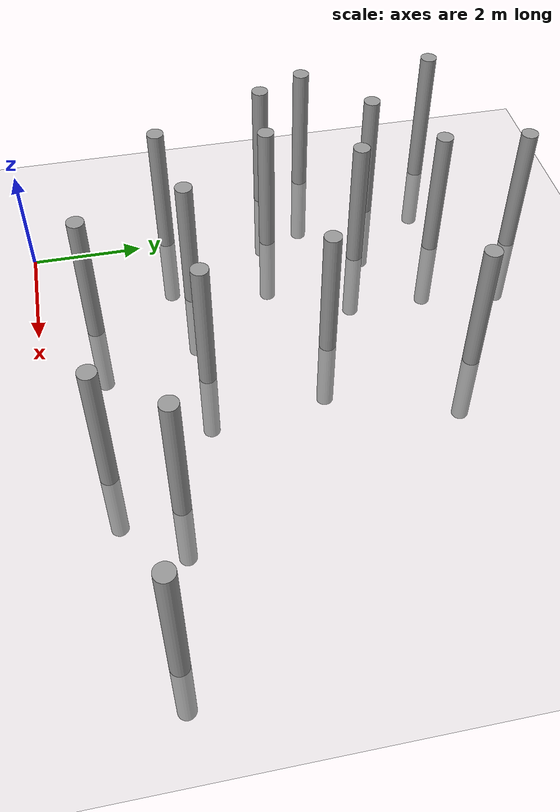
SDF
<sdf version="1.6">
 <world name="default">
  <model name="ground_plane">
   <static>1</static>
   <link name="link">
    <collision name="collision">
     <geometry><plane><normal>0 0 1</normal><size>100 100</size></plane></geometry>
     <surface><friction><ode><mu>100</mu><mu2>50</mu2></ode></friction></surface>
    </collision>
    <visual name="visual">
     <cast_shadows>0</cast_shadows>
     <geometry><plane><normal>0 0 1</normal><size>100 100</size></plane></geometry>
     <material>
      <script><uri>file://media/materials/scripts/gazebo.material</uri><name>Gazebo/Grey</name></script>
     </material>
    </visual>
   </link>
  </model>
  <model name="unit_cylinder_clone_0">
   <link name="link">
    <inertial>
     <mass>1000</mass>
     <inertia><ixx>145.833</ixx><ixy>0</ixy><ixz>0</ixz><iyy>145.833</iyy><iyz>0</iyz><izz>125</izz></inertia>
    </inertial>
    <visual name="visual">
     <geometry><cylinder><radius>0.15</radius><length>4</length></cylinder></geometry>
     <material>
      <script><name>Gazebo/Grey</name><uri>file://media/materials/scripts/gazebo.material</uri></script>
      <shader type="pixel"><normal_map>__default__</normal_map></shader>
      <ambient>0.3 0.3 0.3 1</ambient>
      <diffuse>0.7 0.7 0.7 1</diffuse>
      <specular>0.01 0.01 0.01 1</specular>
      <emissive>0 0 0 1</emissive>
     </material>
    </visual>
    <collision name="collision">
     <geometry><cylinder><radius>0.15</radius><length>4</length></cylinder></geometry>
     <surface>
      <friction>
       <ode><mu>1</mu><mu2>1</mu2><fdir1>0 0 0</fdir1><slip1>0</slip1><slip2>0</slip2></ode>
       <torsional>
        <coefficient>1</coefficient>
        <patch_radius>0</patch_radius>
        <surface_radius>0</surface_radius>
        <use_patch_radius>1</use_patch_radius>
        <ode><slip>0</slip></ode>
       </torsional>
      </friction>
      <bounce><restitution_coefficient>0</restitution_coefficient><threshold>1e+06</threshold></bounce>
      <contact>
       <collide_without_contact>0</collide_without_contact>
       <collide_without_contact_bitmask>1</collide_without_contact_bitmask>
       <collide_bitmask>1</collide_bitmask>
       <ode>
        <soft_cfm>0</soft_cfm>
        <soft_erp>0.2</soft_erp>
        <kp>1e+13</kp>
        <kd>1</kd>
        <max_vel>0.01</max_vel>
        <min_depth>0</min_depth>
       </ode>
       <bullet>
        <split_impulse>1</split_impulse>
        <split_impulse_penetration_threshold>-0.01</split_impulse_penetration_threshold>
        <soft_cfm>0</soft_cfm>
        <soft_erp>0.2</soft_erp>
        <kp>1e+13</kp>
        <kd>1</kd>
       </bullet>
      </contact>
     </surface>
    </collision>
   </link>
   <static>0</static>
   <pose>-0.126052 2.52876 0.5 0 -0 0</pose>
  </model>
  <model name="unit_cylinder_clone_1">
   <link name="link">
    <inertial>
     <mass>1000</mass>
     <inertia><ixx>145.833</ixx><ixy>0</ixy><ixz>0</ixz><iyy>145.833</iyy><iyz>0</iyz><izz>125</izz></inertia>
    </inertial>
    <visual name="visual">
     <geometry><cylinder><radius>0.15</radius><length>4</length></cylinder></geometry>
     <material>
      <script><name>Gazebo/Grey</name><uri>file://media/materials/scripts/gazebo.material</uri></script>
      <shader type="pixel"><normal_map>__default__</normal_map></shader>
      <ambient>0.3 0.3 0.3 1</ambient>
      <diffuse>0.7 0.7 0.7 1</diffuse>
      <specular>0.01 0.01 0.01 1</specular>
      <emissive>0 0 0 1</emissive>
     </material>
    </visual>
    <collision name="collision">
     <geometry><cylinder><radius>0.15</radius><length>4</length></cylinder></geometry>
     <surface>
      <friction>
       <ode><mu>1</mu><mu2>1</mu2><fdir1>0 0 0</fdir1><slip1>0</slip1><slip2>0</slip2></ode>
       <torsional>
        <coefficient>1</coefficient>
        <patch_radius>0</patch_radius>
        <surface_radius>0</surface_radius>
        <use_patch_radius>1</use_patch_radius>
        <ode><slip>0</slip></ode>
       </torsional>
      </friction>
      <bounce><restitution_coefficient>0</restitution_coefficient><threshold>1e+06</threshold></bounce>
      <contact>
       <collide_without_contact>0</collide_without_contact>
       <collide_without_contact_bitmask>1</collide_without_contact_bitmask>
       <collide_bitmask>1</collide_bitmask>
       <ode>
        <soft_cfm>0</soft_cfm>
        <soft_erp>0.2</soft_erp>
        <kp>1e+13</kp>
        <kd>1</kd>
        <max_vel>0.01</max_vel>
        <min_depth>0</min_depth>
       </ode>
       <bullet>
        <split_impulse>1</split_impulse>
        <split_impulse_penetration_threshold>-0.01</split_impulse_penetration_threshold>
        <soft_cfm>0</soft_cfm>
        <soft_erp>0.2</soft_erp>
        <kp>1e+13</kp>
        <kd>1</kd>
       </bullet>
      </contact>
     </surface>
    </collision>
   </link>
   <static>0</static>
   <pose>1.48874 2.81375 0.517469 0 -0 0</pose>
  </model>
  <model name="unit_cylinder_clone_2">
   <link name="link">
    <inertial>
     <mass>1000</mass>
     <inertia><ixx>145.833</ixx><ixy>0</ixy><ixz>0</ixz><iyy>145.833</iyy><iyz>0</iyz><izz>125</izz></inertia>
    </inertial>
    <visual name="visual">
     <geometry><cylinder><radius>0.15</radius><length>4</length></cylinder></geometry>
     <material>
      <script><name>Gazebo/Grey</name><uri>file://media/materials/scripts/gazebo.material</uri></script>
      <shader type="pixel"><normal_map>__default__</normal_map></shader>
      <ambient>0.3 0.3 0.3 1</ambient>
      <diffuse>0.7 0.7 0.7 1</diffuse>
      <specular>0.01 0.01 0.01 1</specular>
      <emissive>0 0 0 1</emissive>
     </material>
    </visual>
    <collision name="collision">
     <geometry><cylinder><radius>0.15</radius><length>4</length></cylinder></geometry>
     <surface>
      <friction>
       <ode><mu>1</mu><mu2>1</mu2><fdir1>0 0 0</fdir1><slip1>0</slip1><slip2>0</slip2></ode>
       <torsional>
        <coefficient>1</coefficient>
        <patch_radius>0</patch_radius>
        <surface_radius>0</surface_radius>
        <use_patch_radius>1</use_patch_radius>
        <ode><slip>0</slip></ode>
       </torsional>
      </friction>
      <bounce><restitution_coefficient>0</restitution_coefficient><threshold>1e+06</threshold></bounce>
      <contact>
       <collide_without_contact>0</collide_without_contact>
       <collide_without_contact_bitmask>1</collide_without_contact_bitmask>
       <collide_bitmask>1</collide_bitmask>
       <ode>
        <soft_cfm>0</soft_cfm>
        <soft_erp>0.2</soft_erp>
        <kp>1e+13</kp>
        <kd>1</kd>
        <max_vel>0.01</max_vel>
        <min_depth>0</min_depth>
       </ode>
       <bullet>
        <split_impulse>1</split_impulse>
        <split_impulse_penetration_threshold>-0.01</split_impulse_penetration_threshold>
        <soft_cfm>0</soft_cfm>
        <soft_erp>0.2</soft_erp>
        <kp>1e+13</kp>
        <kd>1</kd>
       </bullet>
      </contact>
     </surface>
    </collision>
   </link>
   <static>0</static>
   <pose>-1.0734 4.58997 0.5 0 -0 0</pose>
  </model>
  <model name="unit_cylinder_clone_3">
   <link name="link">
    <inertial>
     <mass>1000</mass>
     <inertia><ixx>145.833</ixx><ixy>0</ixy><ixz>0</ixz><iyy>145.833</iyy><iyz>0</iyz><izz>125</izz></inertia>
    </inertial>
    <visual name="visual">
     <geometry><cylinder><radius>0.15</radius><length>4</length></cylinder></geometry>
     <material>
      <script><name>Gazebo/Grey</name><uri>file://media/materials/scripts/gazebo.material</uri></script>
      <shader type="pixel"><normal_map>__default__</normal_map></shader>
      <ambient>0.3 0.3 0.3 1</ambient>
      <diffuse>0.7 0.7 0.7 1</diffuse>
      <specular>0.01 0.01 0.01 1</specular>
      <emissive>0 0 0 1</emissive>
     </material>
    </visual>
    <collision name="collision">
     <geometry><cylinder><radius>0.15</radius><length>4</length></cylinder></geometry>
     <surface>
      <friction>
       <ode><mu>1</mu><mu2>1</mu2><fdir1>0 0 0</fdir1><slip1>0</slip1><slip2>0</slip2></ode>
       <torsional>
        <coefficient>1</coefficient>
        <patch_radius>0</patch_radius>
        <surface_radius>0</surface_radius>
        <use_patch_radius>1</use_patch_radius>
        <ode><slip>0</slip></ode>
       </torsional>
      </friction>
      <bounce><restitution_coefficient>0</restitution_coefficient><threshold>1e+06</threshold></bounce>
      <contact>
       <collide_without_contact>0</collide_without_contact>
       <collide_without_contact_bitmask>1</collide_without_contact_bitmask>
       <collide_bitmask>1</collide_bitmask>
       <ode>
        <soft_cfm>0</soft_cfm>
        <soft_erp>0.2</soft_erp>
        <kp>1e+13</kp>
        <kd>1</kd>
        <max_vel>0.01</max_vel>
        <min_depth>0</min_depth>
       </ode>
       <bullet>
        <split_impulse>1</split_impulse>
        <split_impulse_penetration_threshold>-0.01</split_impulse_penetration_threshold>
        <soft_cfm>0</soft_cfm>
        <soft_erp>0.2</soft_erp>
        <kp>1e+13</kp>
        <kd>1</kd>
       </bullet>
      </contact>
     </surface>
    </collision>
   </link>
   <static>0</static>
   <pose>1 6 0.5 0 -0 0</pose>
  </model>
  <model name="unit_cylinder_clone_18">
   <link name="link">
    <inertial>
     <mass>1000</mass>
     <inertia><ixx>145.833</ixx><ixy>0</ixy><ixz>0</ixz><iyy>145.833</iyy><iyz>0</iyz><izz>125</izz></inertia>
    </inertial>
    <visual name="visual">
     <geometry><cylinder><radius>0.15</radius><length>4</length></cylinder></geometry>
     <material>
      <script><name>Gazebo/Grey</name><uri>file://media/materials/scripts/gazebo.material</uri></script>
      <shader type="pixel"><normal_map>__default__</normal_map></shader>
      <ambient>0.3 0.3 0.3 1</ambient>
      <diffuse>0.7 0.7 0.7 1</diffuse>
      <specular>0.01 0.01 0.01 1</specular>
      <emissive>0 0 0 1</emissive>
     </material>
    </visual>
    <collision name="collision">
     <geometry><cylinder><radius>0.15</radius><length>4</length></cylinder></geometry>
     <surface>
      <friction>
       <ode><mu>1</mu><mu2>1</mu2><fdir1>0 0 0</fdir1><slip1>0</slip1><slip2>0</slip2></ode>
       <torsional>
        <coefficient>1</coefficient>
        <patch_radius>0</patch_radius>
        <surface_radius>0</surface_radius>
        <use_patch_radius>1</use_patch_radius>
        <ode><slip>0</slip></ode>
       </torsional>
      </friction>
      <bounce><restitution_coefficient>0</restitution_coefficient><threshold>1e+06</threshold></bounce>
      <contact>
       <collide_without_contact>0</collide_without_contact>
       <collide_without_contact_bitmask>1</collide_without_contact_bitmask>
       <collide_bitmask>1</collide_bitmask>
       <ode>
        <soft_cfm>0</soft_cfm>
        <soft_erp>0.2</soft_erp>
        <kp>1e+13</kp>
        <kd>1</kd>
        <max_vel>0.01</max_vel>
        <min_depth>0</min_depth>
       </ode>
       <bullet>
        <split_impulse>1</split_impulse>
        <split_impulse_penetration_threshold>-0.01</split_impulse_penetration_threshold>
        <soft_cfm>0</soft_cfm>
        <soft_erp>0.2</soft_erp>
        <kp>1e+13</kp>
        <kd>1</kd>
       </bullet>
      </contact>
     </surface>
    </collision>
   </link>
   <static>0</static>
   <pose>1.18442 9.01128 0.5 0 -0 0</pose>
  </model>
  <model name="unit_cylinder_clone_20">
   <link name="link">
    <inertial>
     <mass>1000</mass>
     <inertia><ixx>145.833</ixx><ixy>0</ixy><ixz>0</ixz><iyy>145.833</iyy><iyz>0</iyz><izz>125</izz></inertia>
    </inertial>
    <visual name="visual">
     <geometry><cylinder><radius>0.15</radius><length>4</length></cylinder></geometry>
     <material>
      <script><name>Gazebo/Grey</name><uri>file://media/materials/scripts/gazebo.material</uri></script>
      <shader type="pixel"><normal_map>__default__</normal_map></shader>
      <ambient>0.3 0.3 0.3 1</ambient>
      <diffuse>0.7 0.7 0.7 1</diffuse>
      <specular>0.01 0.01 0.01 1</specular>
      <emissive>0 0 0 1</emissive>
     </material>
    </visual>
    <collision name="collision">
     <geometry><cylinder><radius>0.15</radius><length>4</length></cylinder></geometry>
     <surface>
      <friction>
       <ode><mu>1</mu><mu2>1</mu2><fdir1>0 0 0</fdir1><slip1>0</slip1><slip2>0</slip2></ode>
       <torsional>
        <coefficient>1</coefficient>
        <patch_radius>0</patch_radius>
        <surface_radius>0</surface_radius>
        <use_patch_radius>1</use_patch_radius>
        <ode><slip>0</slip></ode>
       </torsional>
      </friction>
      <bounce><restitution_coefficient>0</restitution_coefficient><threshold>1e+06</threshold></bounce>
      <contact>
       <collide_without_contact>0</collide_without_contact>
       <collide_without_contact_bitmask>1</collide_without_contact_bitmask>
       <collide_bitmask>1</collide_bitmask>
       <ode>
        <soft_cfm>0</soft_cfm>
        <soft_erp>0.2</soft_erp>
        <kp>1e+13</kp>
        <kd>1</kd>
        <max_vel>0.01</max_vel>
        <min_depth>0</min_depth>
       </ode>
       <bullet>
        <split_impulse>1</split_impulse>
        <split_impulse_penetration_threshold>-0.01</split_impulse_penetration_threshold>
        <soft_cfm>0</soft_cfm>
        <soft_erp>0.2</soft_erp>
        <kp>1e+13</kp>
        <kd>1</kd>
       </bullet>
      </contact>
     </surface>
    </collision>
   </link>
   <static>0</static>
   <pose>3.98029 7.32313 0.5 0 -0 0</pose>
  </model>
  <model name="unit_cylinder_clone_21">
   <link name="link">
    <inertial>
     <mass>1000</mass>
     <inertia><ixx>145.833</ixx><ixy>0</ixy><ixz>0</ixz><iyy>145.833</iyy><iyz>0</iyz><izz>125</izz></inertia>
    </inertial>
    <visual name="visual">
     <geometry><cylinder><radius>0.15</radius><length>4</length></cylinder></geometry>
     <material>
      <script><name>Gazebo/Grey</name><uri>file://media/materials/scripts/gazebo.material</uri></script>
      <shader type="pixel"><normal_map>__default__</normal_map></shader>
      <ambient>0.3 0.3 0.3 1</ambient>
      <diffuse>0.7 0.7 0.7 1</diffuse>
      <specular>0.01 0.01 0.01 1</specular>
      <emissive>0 0 0 1</emissive>
     </material>
    </visual>
    <collision name="collision">
     <geometry><cylinder><radius>0.15</radius><length>4</length></cylinder></geometry>
     <surface>
      <friction>
       <ode><mu>1</mu><mu2>1</mu2><fdir1>0 0 0</fdir1><slip1>0</slip1><slip2>0</slip2></ode>
       <torsional>
        <coefficient>1</coefficient>
        <patch_radius>0</patch_radius>
        <surface_radius>0</surface_radius>
        <use_patch_radius>1</use_patch_radius>
        <ode><slip>0</slip></ode>
       </torsional>
      </friction>
      <bounce><restitution_coefficient>0</restitution_coefficient><threshold>1e+06</threshold></bounce>
      <contact>
       <collide_without_contact>0</collide_without_contact>
       <collide_without_contact_bitmask>1</collide_without_contact_bitmask>
       <collide_bitmask>1</collide_bitmask>
       <ode>
        <soft_cfm>0</soft_cfm>
        <soft_erp>0.2</soft_erp>
        <kp>1e+13</kp>
        <kd>1</kd>
        <max_vel>0.01</max_vel>
        <min_depth>0</min_depth>
       </ode>
       <bullet>
        <split_impulse>1</split_impulse>
        <split_impulse_penetration_threshold>-0.01</split_impulse_penetration_threshold>
        <soft_cfm>0</soft_cfm>
        <soft_erp>0.2</soft_erp>
        <kp>1e+13</kp>
        <kd>1</kd>
       </bullet>
      </contact>
     </surface>
    </collision>
   </link>
   <static>0</static>
   <pose>-1.30193 7.90801 0.66206 0 -0 0</pose>
  </model>
  <model name="unit_cylinder_clone_22">
   <link name="link">
    <inertial>
     <mass>1000</mass>
     <inertia><ixx>145.833</ixx><ixy>0</ixy><ixz>0</ixz><iyy>145.833</iyy><iyz>0</iyz><izz>125</izz></inertia>
    </inertial>
    <visual name="visual">
     <geometry><cylinder><radius>0.15</radius><length>4</length></cylinder></geometry>
     <material>
      <script><name>Gazebo/Grey</name><uri>file://media/materials/scripts/gazebo.material</uri></script>
      <shader type="pixel"><normal_map>__default__</normal_map></shader>
      <ambient>0.3 0.3 0.3 1</ambient>
      <diffuse>0.7 0.7 0.7 1</diffuse>
      <specular>0.01 0.01 0.01 1</specular>
      <emissive>0 0 0 1</emissive>
     </material>
    </visual>
    <collision name="collision">
     <geometry><cylinder><radius>0.15</radius><length>4</length></cylinder></geometry>
     <surface>
      <friction>
       <ode><mu>1</mu><mu2>1</mu2><fdir1>0 0 0</fdir1><slip1>0</slip1><slip2>0</slip2></ode>
       <torsional>
        <coefficient>1</coefficient>
        <patch_radius>0</patch_radius>
        <surface_radius>0</surface_radius>
        <use_patch_radius>1</use_patch_radius>
        <ode><slip>0</slip></ode>
       </torsional>
      </friction>
      <bounce><restitution_coefficient>0</restitution_coefficient><threshold>1e+06</threshold></bounce>
      <contact>
       <collide_without_contact>0</collide_without_contact>
       <collide_without_contact_bitmask>1</collide_without_contact_bitmask>
       <collide_bitmask>1</collide_bitmask>
       <ode>
        <soft_cfm>0</soft_cfm>
        <soft_erp>0.2</soft_erp>
        <kp>1e+13</kp>
        <kd>1</kd>
        <max_vel>0.01</max_vel>
        <min_depth>0</min_depth>
       </ode>
       <bullet>
        <split_impulse>1</split_impulse>
        <split_impulse_penetration_threshold>-0.01</split_impulse_penetration_threshold>
        <soft_cfm>0</soft_cfm>
        <soft_erp>0.2</soft_erp>
        <kp>1e+13</kp>
        <kd>1</kd>
       </bullet>
      </contact>
     </surface>
    </collision>
   </link>
   <static>0</static>
   <pose>0.989169 7.5132 0.5 0 -0 0</pose>
  </model>
  <model name="unit_cylinder_clone_23">
   <link name="link">
    <inertial>
     <mass>1000</mass>
     <inertia><ixx>145.833</ixx><ixy>0</ixy><ixz>0</ixz><iyy>145.833</iyy><iyz>0</iyz><izz>125</izz></inertia>
    </inertial>
    <visual name="visual">
     <geometry><cylinder><radius>0.15</radius><length>4</length></cylinder></geometry>
     <material>
      <script><name>Gazebo/Grey</name><uri>file://media/materials/scripts/gazebo.material</uri></script>
      <shader type="pixel"><normal_map>__default__</normal_map></shader>
      <ambient>0.3 0.3 0.3 1</ambient>
      <diffuse>0.7 0.7 0.7 1</diffuse>
      <specular>0.01 0.01 0.01 1</specular>
      <emissive>0 0 0 1</emissive>
     </material>
    </visual>
    <collision name="collision">
     <geometry><cylinder><radius>0.15</radius><length>4</length></cylinder></geometry>
     <surface>
      <friction>
       <ode><mu>1</mu><mu2>1</mu2><fdir1>0 0 0</fdir1><slip1>0</slip1><slip2>0</slip2></ode>
       <torsional>
        <coefficient>1</coefficient>
        <patch_radius>0</patch_radius>
        <surface_radius>0</surface_radius>
        <use_patch_radius>1</use_patch_radius>
        <ode><slip>0</slip></ode>
       </torsional>
      </friction>
      <bounce><restitution_coefficient>0</restitution_coefficient><threshold>1e+06</threshold></bounce>
      <contact>
       <collide_without_contact>0</collide_without_contact>
       <collide_without_contact_bitmask>1</collide_without_contact_bitmask>
       <collide_bitmask>1</collide_bitmask>
       <ode>
        <soft_cfm>0</soft_cfm>
        <soft_erp>0.2</soft_erp>
        <kp>1e+13</kp>
        <kd>1</kd>
        <max_vel>0.01</max_vel>
        <min_depth>0</min_depth>
       </ode>
       <bullet>
        <split_impulse>1</split_impulse>
        <split_impulse_penetration_threshold>-0.01</split_impulse_penetration_threshold>
        <soft_cfm>0</soft_cfm>
        <soft_erp>0.2</soft_erp>
        <kp>1e+13</kp>
        <kd>1</kd>
       </bullet>
      </contact>
     </surface>
    </collision>
   </link>
   <static>0</static>
   <pose>0.229002 4.44909 0.5 0 -0 0</pose>
  </model>
  <model name="unit_cylinder_clone_24">
   <link name="link">
    <inertial>
     <mass>1000</mass>
     <inertia><ixx>145.833</ixx><ixy>0</ixy><ixz>0</ixz><iyy>145.833</iyy><iyz>0</iyz><izz>125</izz></inertia>
    </inertial>
    <visual name="visual">
     <geometry><cylinder><radius>0.15</radius><length>4</length></cylinder></geometry>
     <material>
      <script><name>Gazebo/Grey</name><uri>file://media/materials/scripts/gazebo.material</uri></script>
      <shader type="pixel"><normal_map>__default__</normal_map></shader>
      <ambient>0.3 0.3 0.3 1</ambient>
      <diffuse>0.7 0.7 0.7 1</diffuse>
      <specular>0.01 0.01 0.01 1</specular>
      <emissive>0 0 0 1</emissive>
     </material>
    </visual>
    <collision name="collision">
     <geometry><cylinder><radius>0.15</radius><length>4</length></cylinder></geometry>
     <surface>
      <friction>
       <ode><mu>1</mu><mu2>1</mu2><fdir1>0 0 0</fdir1><slip1>0</slip1><slip2>0</slip2></ode>
       <torsional>
        <coefficient>1</coefficient>
        <patch_radius>0</patch_radius>
        <surface_radius>0</surface_radius>
        <use_patch_radius>1</use_patch_radius>
        <ode><slip>0</slip></ode>
       </torsional>
      </friction>
      <bounce><restitution_coefficient>0</restitution_coefficient><threshold>1e+06</threshold></bounce>
      <contact>
       <collide_without_contact>0</collide_without_contact>
       <collide_without_contact_bitmask>1</collide_without_contact_bitmask>
       <collide_bitmask>1</collide_bitmask>
       <ode>
        <soft_cfm>0</soft_cfm>
        <soft_erp>0.2</soft_erp>
        <kp>1e+13</kp>
        <kd>1</kd>
        <max_vel>0.01</max_vel>
        <min_depth>0</min_depth>
       </ode>
       <bullet>
        <split_impulse>1</split_impulse>
        <split_impulse_penetration_threshold>-0.01</split_impulse_penetration_threshold>
        <soft_cfm>0</soft_cfm>
        <soft_erp>0.2</soft_erp>
        <kp>1e+13</kp>
        <kd>1</kd>
       </bullet>
      </contact>
     </surface>
    </collision>
   </link>
   <static>0</static>
   <pose>3.1593 4.96118 0.5 0 -0 0</pose>
  </model>
  <model name="unit_cylinder_clone_25">
   <link name="link">
    <inertial>
     <mass>1000</mass>
     <inertia><ixx>145.833</ixx><ixy>0</ixy><ixz>0</ixz><iyy>145.833</iyy><iyz>0</iyz><izz>125</izz></inertia>
    </inertial>
    <visual name="visual">
     <geometry><cylinder><radius>0.15</radius><length>4</length></cylinder></geometry>
     <material>
      <script><name>Gazebo/Grey</name><uri>file://media/materials/scripts/gazebo.material</uri></script>
      <shader type="pixel"><normal_map>__default__</normal_map></shader>
      <ambient>0.3 0.3 0.3 1</ambient>
      <diffuse>0.7 0.7 0.7 1</diffuse>
      <specular>0.01 0.01 0.01 1</specular>
      <emissive>0 0 0 1</emissive>
     </material>
    </visual>
    <collision name="collision">
     <geometry><cylinder><radius>0.15</radius><length>4</length></cylinder></geometry>
     <surface>
      <friction>
       <ode><mu>1</mu><mu2>1</mu2><fdir1>0 0 0</fdir1><slip1>0</slip1><slip2>0</slip2></ode>
       <torsional>
        <coefficient>1</coefficient>
        <patch_radius>0</patch_radius>
        <surface_radius>0</surface_radius>
        <use_patch_radius>1</use_patch_radius>
        <ode><slip>0</slip></ode>
       </torsional>
      </friction>
      <bounce><restitution_coefficient>0</restitution_coefficient><threshold>1e+06</threshold></bounce>
      <contact>
       <collide_without_contact>0</collide_without_contact>
       <collide_without_contact_bitmask>1</collide_without_contact_bitmask>
       <collide_bitmask>1</collide_bitmask>
       <ode>
        <soft_cfm>0</soft_cfm>
        <soft_erp>0.2</soft_erp>
        <kp>1e+13</kp>
        <kd>1</kd>
        <max_vel>0.01</max_vel>
        <min_depth>0</min_depth>
       </ode>
       <bullet>
        <split_impulse>1</split_impulse>
        <split_impulse_penetration_threshold>-0.01</split_impulse_penetration_threshold>
        <soft_cfm>0</soft_cfm>
        <soft_erp>0.2</soft_erp>
        <kp>1e+13</kp>
        <kd>1</kd>
       </bullet>
      </contact>
     </surface>
    </collision>
   </link>
   <static>0</static>
   <pose>-1.48649 5.46279 0.5 0 -0 0</pose>
  </model>
  <model name="unit_cylinder_clone_28">
   <link name="link">
    <inertial>
     <mass>1000</mass>
     <inertia><ixx>145.833</ixx><ixy>0</ixy><ixz>0</ixz><iyy>145.833</iyy><iyz>0</iyz><izz>125</izz></inertia>
    </inertial>
    <visual name="visual">
     <geometry><cylinder><radius>0.15</radius><length>4</length></cylinder></geometry>
     <material>
      <script><name>Gazebo/Grey</name><uri>file://media/materials/scripts/gazebo.material</uri></script>
      <shader type="pixel"><normal_map>__default__</normal_map></shader>
      <ambient>0.3 0.3 0.3 1</ambient>
      <diffuse>0.7 0.7 0.7 1</diffuse>
      <specular>0.01 0.01 0.01 1</specular>
      <emissive>0 0 0 1</emissive>
     </material>
    </visual>
    <collision name="collision">
     <geometry><cylinder><radius>0.15</radius><length>4</length></cylinder></geometry>
     <surface>
      <friction>
       <ode><mu>1</mu><mu2>1</mu2><fdir1>0 0 0</fdir1><slip1>0</slip1><slip2>0</slip2></ode>
       <torsional>
        <coefficient>1</coefficient>
        <patch_radius>0</patch_radius>
        <surface_radius>0</surface_radius>
        <use_patch_radius>1</use_patch_radius>
        <ode><slip>0</slip></ode>
       </torsional>
      </friction>
      <bounce><restitution_coefficient>0</restitution_coefficient><threshold>1e+06</threshold></bounce>
      <contact>
       <collide_without_contact>0</collide_without_contact>
       <collide_without_contact_bitmask>1</collide_without_contact_bitmask>
       <collide_bitmask>1</collide_bitmask>
       <ode>
        <soft_cfm>0</soft_cfm>
        <soft_erp>0.2</soft_erp>
        <kp>1e+13</kp>
        <kd>1</kd>
        <max_vel>0.01</max_vel>
        <min_depth>0</min_depth>
       </ode>
       <bullet>
        <split_impulse>1</split_impulse>
        <split_impulse_penetration_threshold>-0.01</split_impulse_penetration_threshold>
        <soft_cfm>0</soft_cfm>
        <soft_erp>0.2</soft_erp>
        <kp>1e+13</kp>
        <kd>1</kd>
       </bullet>
      </contact>
     </surface>
    </collision>
   </link>
   <static>0</static>
   <pose>2 1 0.5 0 -0 0</pose>
  </model>
  <model name="unit_cylinder_clone_29">
   <link name="link">
    <inertial>
     <mass>1000</mass>
     <inertia><ixx>145.833</ixx><ixy>0</ixy><ixz>0</ixz><iyy>145.833</iyy><iyz>0</iyz><izz>125</izz></inertia>
    </inertial>
    <visual name="visual">
     <geometry><cylinder><radius>0.15</radius><length>4</length></cylinder></geometry>
     <material>
      <script><name>Gazebo/Grey</name><uri>file://media/materials/scripts/gazebo.material</uri></script>
      <shader type="pixel"><normal_map>__default__</normal_map></shader>
      <ambient>0.3 0.3 0.3 1</ambient>
      <diffuse>0.7 0.7 0.7 1</diffuse>
      <specular>0.01 0.01 0.01 1</specular>
      <emissive>0 0 0 1</emissive>
     </material>
    </visual>
    <collision name="collision">
     <geometry><cylinder><radius>0.15</radius><length>4</length></cylinder></geometry>
     <surface>
      <friction>
       <ode><mu>1</mu><mu2>1</mu2><fdir1>0 0 0</fdir1><slip1>0</slip1><slip2>0</slip2></ode>
       <torsional>
        <coefficient>1</coefficient>
        <patch_radius>0</patch_radius>
        <surface_radius>0</surface_radius>
        <use_patch_radius>1</use_patch_radius>
        <ode><slip>0</slip></ode>
       </torsional>
      </friction>
      <bounce><restitution_coefficient>0</restitution_coefficient><threshold>1e+06</threshold></bounce>
      <contact>
       <collide_without_contact>0</collide_without_contact>
       <collide_without_contact_bitmask>1</collide_without_contact_bitmask>
       <collide_bitmask>1</collide_bitmask>
       <ode>
        <soft_cfm>0</soft_cfm>
        <soft_erp>0.2</soft_erp>
        <kp>1e+13</kp>
        <kd>1</kd>
        <max_vel>0.01</max_vel>
        <min_depth>0</min_depth>
       </ode>
       <bullet>
        <split_impulse>1</split_impulse>
        <split_impulse_penetration_threshold>-0.01</split_impulse_penetration_threshold>
        <soft_cfm>0</soft_cfm>
        <soft_erp>0.2</soft_erp>
        <kp>1e+13</kp>
        <kd>1</kd>
       </bullet>
      </contact>
     </surface>
    </collision>
   </link>
   <static>0</static>
   <pose>6 2 0.5 0 -0 0</pose>
  </model>
  <model name="unit_cylinder_clone_30">
   <link name="link">
    <inertial>
     <mass>1000</mass>
     <inertia><ixx>145.833</ixx><ixy>0</ixy><ixz>0</ixz><iyy>145.833</iyy><iyz>0</iyz><izz>125</izz></inertia>
    </inertial>
    <visual name="visual">
     <geometry><cylinder><radius>0.15</radius><length>4</length></cylinder></geometry>
     <material>
      <script><name>Gazebo/Grey</name><uri>file://media/materials/scripts/gazebo.material</uri></script>
      <shader type="pixel"><normal_map>__default__</normal_map></shader>
      <ambient>0.3 0.3 0.3 1</ambient>
      <diffuse>0.7 0.7 0.7 1</diffuse>
      <specular>0.01 0.01 0.01 1</specular>
      <emissive>0 0 0 1</emissive>
     </material>
    </visual>
    <collision name="collision">
     <geometry><cylinder><radius>0.15</radius><length>4</length></cylinder></geometry>
     <surface>
      <friction>
       <ode><mu>1</mu><mu2>1</mu2><fdir1>0 0 0</fdir1><slip1>0</slip1><slip2>0</slip2></ode>
       <torsional>
        <coefficient>1</coefficient>
        <patch_radius>0</patch_radius>
        <surface_radius>0</surface_radius>
        <use_patch_radius>1</use_patch_radius>
        <ode><slip>0</slip></ode>
       </torsional>
      </friction>
      <bounce><restitution_coefficient>0</restitution_coefficient><threshold>1e+06</threshold></bounce>
      <contact>
       <collide_without_contact>0</collide_without_contact>
       <collide_without_contact_bitmask>1</collide_without_contact_bitmask>
       <collide_bitmask>1</collide_bitmask>
       <ode>
        <soft_cfm>0</soft_cfm>
        <soft_erp>0.2</soft_erp>
        <kp>1e+13</kp>
        <kd>1</kd>
        <max_vel>0.01</max_vel>
        <min_depth>0</min_depth>
       </ode>
       <bullet>
        <split_impulse>1</split_impulse>
        <split_impulse_penetration_threshold>-0.01</split_impulse_penetration_threshold>
        <soft_cfm>0</soft_cfm>
        <soft_erp>0.2</soft_erp>
        <kp>1e+13</kp>
        <kd>1</kd>
       </bullet>
      </contact>
     </surface>
    </collision>
   </link>
   <static>0</static>
   <pose>5.2244 0.959476 0.5 0 -0 0</pose>
  </model>
  <model name="unit_cylinder_clone_35">
   <link name="link">
    <inertial>
     <mass>1000</mass>
     <inertia><ixx>145.833</ixx><ixy>0</ixy><ixz>0</ixz><iyy>145.833</iyy><iyz>0</iyz><izz>125</izz></inertia>
    </inertial>
    <visual name="visual">
     <geometry><cylinder><radius>0.15</radius><length>4</length></cylinder></geometry>
     <material>
      <script><name>Gazebo/Grey</name><uri>file://media/materials/scripts/gazebo.material</uri></script>
      <shader type="pixel"><normal_map>__default__</normal_map></shader>
      <ambient>0.3 0.3 0.3 1</ambient>
      <diffuse>0.7 0.7 0.7 1</diffuse>
      <specular>0.01 0.01 0.01 1</specular>
      <emissive>0 0 0 1</emissive>
     </material>
    </visual>
    <collision name="collision">
     <geometry><cylinder><radius>0.15</radius><length>4</length></cylinder></geometry>
     <surface>
      <friction>
       <ode><mu>1</mu><mu2>1</mu2><fdir1>0 0 0</fdir1><slip1>0</slip1><slip2>0</slip2></ode>
       <torsional>
        <coefficient>1</coefficient>
        <patch_radius>0</patch_radius>
        <surface_radius>0</surface_radius>
        <use_patch_radius>1</use_patch_radius>
        <ode><slip>0</slip></ode>
       </torsional>
      </friction>
      <bounce><restitution_coefficient>0</restitution_coefficient><threshold>1e+06</threshold></bounce>
      <contact>
       <collide_without_contact>0</collide_without_contact>
       <collide_without_contact_bitmask>1</collide_without_contact_bitmask>
       <collide_bitmask>1</collide_bitmask>
       <ode>
        <soft_cfm>0</soft_cfm>
        <soft_erp>0.2</soft_erp>
        <kp>1e+13</kp>
        <kd>1</kd>
        <max_vel>0.01</max_vel>
        <min_depth>0</min_depth>
       </ode>
       <bullet>
        <split_impulse>1</split_impulse>
        <split_impulse_penetration_threshold>-0.01</split_impulse_penetration_threshold>
        <soft_cfm>0</soft_cfm>
        <soft_erp>0.2</soft_erp>
        <kp>1e+13</kp>
        <kd>1</kd>
       </bullet>
      </contact>
     </surface>
    </collision>
   </link>
   <static>0</static>
   <pose>8.50964 1.63062 0.5 0 -0 0</pose>
  </model>
  <model name="unit_cylinder_clone_37">
   <link name="link">
    <inertial>
     <mass>1000</mass>
     <inertia><ixx>145.833</ixx><ixy>0</ixy><ixz>0</ixz><iyy>145.833</iyy><iyz>0</iyz><izz>125</izz></inertia>
    </inertial>
    <visual name="visual">
     <geometry><cylinder><radius>0.15</radius><length>4</length></cylinder></geometry>
     <material>
      <script><name>Gazebo/Grey</name><uri>file://media/materials/scripts/gazebo.material</uri></script>
      <shader type="pixel"><normal_map>__default__</normal_map></shader>
      <ambient>0.3 0.3 0.3 1</ambient>
      <diffuse>0.7 0.7 0.7 1</diffuse>
      <specular>0.01 0.01 0.01 1</specular>
      <emissive>0 0 0 1</emissive>
     </material>
    </visual>
    <collision name="collision">
     <geometry><cylinder><radius>0.15</radius><length>4</length></cylinder></geometry>
     <surface>
      <friction>
       <ode><mu>1</mu><mu2>1</mu2><fdir1>0 0 0</fdir1><slip1>0</slip1><slip2>0</slip2></ode>
       <torsional>
        <coefficient>1</coefficient>
        <patch_radius>0</patch_radius>
        <surface_radius>0</surface_radius>
        <use_patch_radius>1</use_patch_radius>
        <ode><slip>0</slip></ode>
       </torsional>
      </friction>
      <bounce><restitution_coefficient>0</restitution_coefficient><threshold>1e+06</threshold></bounce>
      <contact>
       <collide_without_contact>0</collide_without_contact>
       <collide_without_contact_bitmask>1</collide_without_contact_bitmask>
       <collide_bitmask>1</collide_bitmask>
       <ode>
        <soft_cfm>0</soft_cfm>
        <soft_erp>0.2</soft_erp>
        <kp>1e+13</kp>
        <kd>1</kd>
        <max_vel>0.01</max_vel>
        <min_depth>0</min_depth>
       </ode>
       <bullet>
        <split_impulse>1</split_impulse>
        <split_impulse_penetration_threshold>-0.01</split_impulse_penetration_threshold>
        <soft_cfm>0</soft_cfm>
        <soft_erp>0.2</soft_erp>
        <kp>1e+13</kp>
        <kd>1</kd>
       </bullet>
      </contact>
     </surface>
    </collision>
   </link>
   <static>0</static>
   <pose>3.48251 2.7863 0.5 0 -0 0</pose>
  </model>
  <model name="unit_cylinder_clone_21_clone">
   <link name="link">
    <inertial>
     <mass>1000</mass>
     <inertia><ixx>145.833</ixx><ixy>0</ixy><ixz>0</ixz><iyy>145.833</iyy><iyz>0</iyz><izz>125</izz></inertia>
    </inertial>
    <visual name="visual">
     <geometry><cylinder><radius>0.15</radius><length>4</length></cylinder></geometry>
     <material>
      <script><name>Gazebo/Grey</name><uri>file://media/materials/scripts/gazebo.material</uri></script>
      <shader type="pixel"><normal_map>__default__</normal_map></shader>
      <ambient>0.3 0.3 0.3 1</ambient>
      <diffuse>0.7 0.7 0.7 1</diffuse>
      <specular>0.01 0.01 0.01 1</specular>
      <emissive>0 0 0 1</emissive>
     </material>
    </visual>
    <collision name="collision">
     <geometry><cylinder><radius>0.15</radius><length>4</length></cylinder></geometry>
     <surface>
      <friction>
       <ode><mu>1</mu><mu2>1</mu2><fdir1>0 0 0</fdir1><slip1>0</slip1><slip2>0</slip2></ode>
       <torsional>
        <coefficient>1</coefficient>
        <patch_radius>0</patch_radius>
        <surface_radius>0</surface_radius>
        <use_patch_radius>1</use_patch_radius>
        <ode><slip>0</slip></ode>
       </torsional>
      </friction>
      <bounce><restitution_coefficient>0</restitution_coefficient><threshold>1e+06</threshold></bounce>
      <contact>
       <collide_without_contact>0</collide_without_contact>
       <collide_without_contact_bitmask>1</collide_without_contact_bitmask>
       <collide_bitmask>1</collide_bitmask>
       <ode>
        <soft_cfm>0</soft_cfm>
        <soft_erp>0.2</soft_erp>
        <kp>1e+13</kp>
        <kd>1</kd>
        <max_vel>0.01</max_vel>
        <min_depth>0</min_depth>
       </ode>
       <bullet>
        <split_impulse>1</split_impulse>
        <split_impulse_penetration_threshold>-0.01</split_impulse_penetration_threshold>
        <soft_cfm>0</soft_cfm>
        <soft_erp>0.2</soft_erp>
        <kp>1e+13</kp>
        <kd>1</kd>
       </bullet>
      </contact>
     </surface>
    </collision>
   </link>
   <static>0</static>
   <pose>-0.342055 6.54802 0.5 0 -0 0</pose>
  </model>
 </world>
</sdf>
